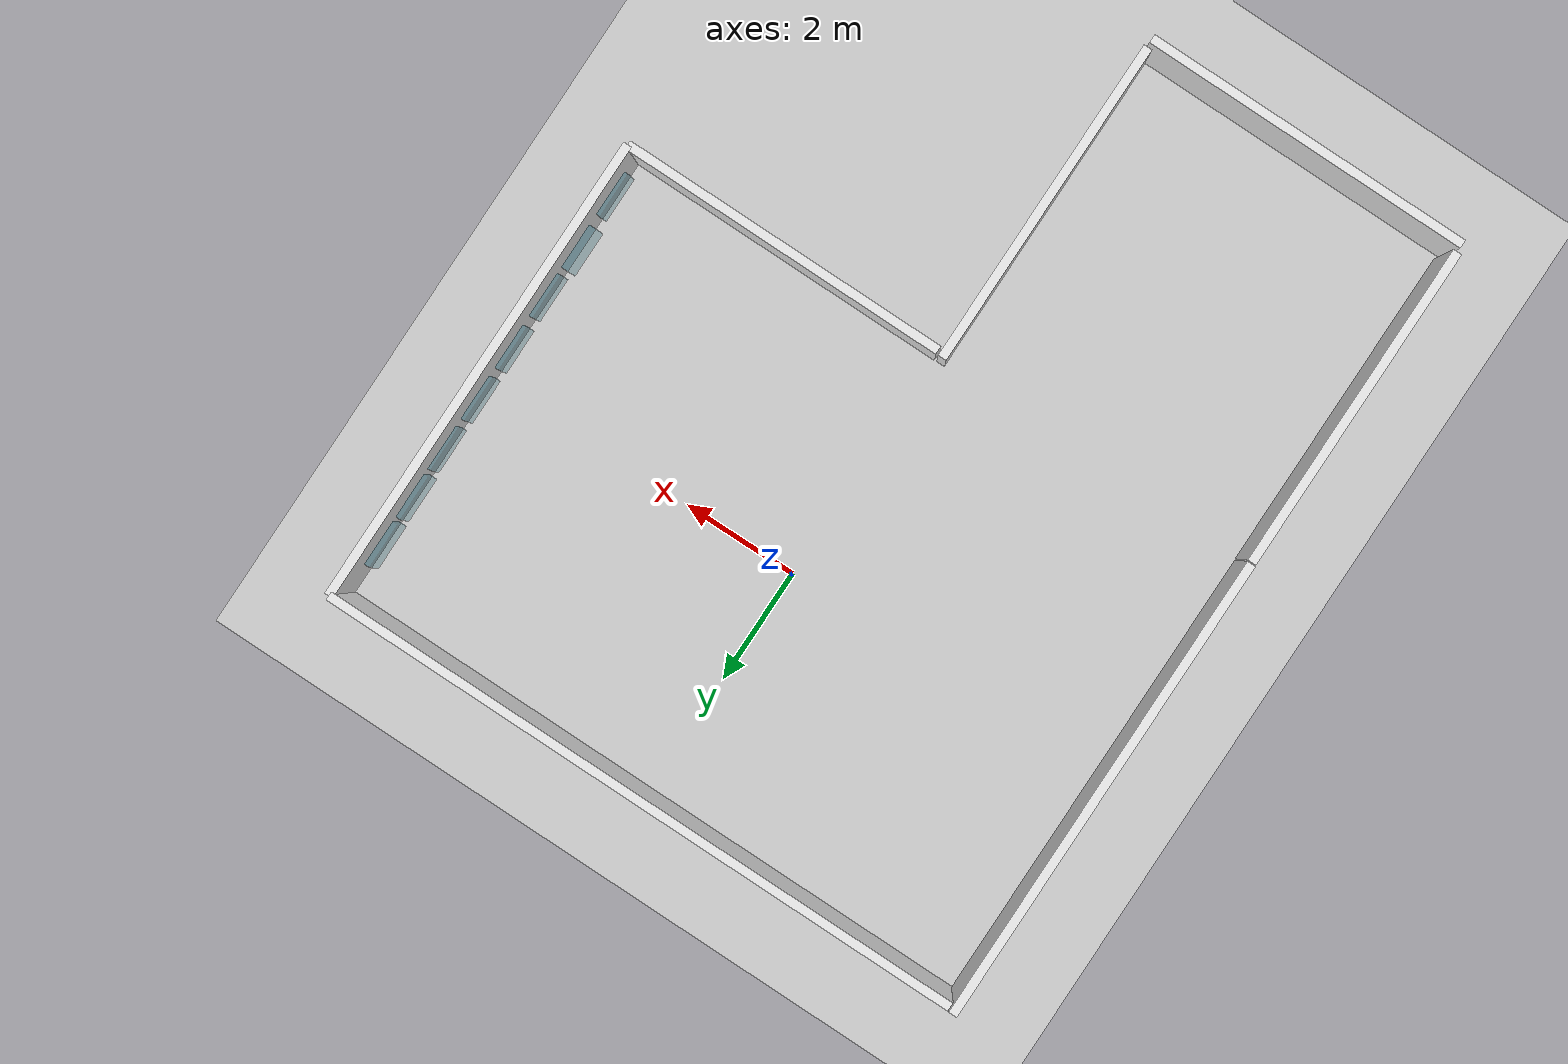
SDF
<sdf version="1.6">
 <world name="default">
  <light name="sun" type="directional">
   <cast_shadows>0</cast_shadows>
   <pose>0 0 10 0 -0 0</pose>
   <diffuse>0.8 0.8 0.8 1</diffuse>
   <specular>0.2 0.2 0.2 1</specular>
   <attenuation>
    <range>1000</range>
    <constant>0.9</constant>
    <linear>0.01</linear>
    <quadratic>0.001</quadratic>
   </attenuation>
   <direction>-0.5 0.5 -1</direction>
  </light>
  <gravity>0 0 -9.8</gravity>
  <magnetic_field>6e-06 2.3e-05 -4.2e-05</magnetic_field>
  <atmosphere type="adiabatic"/>
  <physics name="default_physics" default="0" type="ode">
   <max_step_size>0.01</max_step_size>
   <real_time_factor>1</real_time_factor>
   <real_time_update_rate>100</real_time_update_rate>
   <ode>
    <solver>
     <type>quick</type>
     <iters>100</iters>
     <precon_iters>0</precon_iters>
     <sor>1</sor>
     <use_dynamic_moi_rescaling>0</use_dynamic_moi_rescaling>
    </solver>
    <constraints>
     <cfm>0</cfm>
     <erp>0.5</erp>
     <contact_max_correcting_vel>1000</contact_max_correcting_vel>
     <contact_surface_layer>0</contact_surface_layer>
    </constraints>
   </ode>
  </physics>
  <scene>
   <ambient>0.4 0.4 0.4 1</ambient>
   <background>0.7 0.7 0.7 1</background>
   <shadows>0</shadows>
   <grid>false</grid>
   <origin_visual>false</origin_visual>
  </scene>
  <spherical_coordinates>
   <surface_model>EARTH_WGS84</surface_model>
   <latitude_deg>0</latitude_deg>
   <longitude_deg>0</longitude_deg>
   <elevation>0</elevation>
   <heading_deg>0</heading_deg>
  </spherical_coordinates>
  <model name="office_env_w2">
   <pose>0 4.162 1.25 0 -0 0</pose>
   <link name="Wall_10">
    <visual name="Wall_10_Visual_0">
     <geometry><box><size>11.466 0.15 2.5</size></box></geometry>
     <material>
      <script>
       <uri>model://office_env_w/materials/scripts</uri>
       <uri>model://office_env_w/materials/textures</uri>
       <name>wall_white</name>
      </script>
     </material>
     <meta><layer>0</layer></meta>
    </visual>
    <collision name="Wall_10_Collision_0"><geometry><box><size>11.466 0.15 2.5</size></box></geometry></collision>
   </link>
   <static>1</static>
  </model>
  <model name="office_env_w">
   <pose>5.733 0 1.25 0 -0 1.57</pose>
   <link name="Wall_10">
    <visual name="Wall_10_Visual_0">
     <geometry><box><size>8.324 0.15 2.5</size></box></geometry>
     <material>
      <script>
       <uri>model://office_env_w/materials/scripts</uri>
       <uri>model://office_env_w/materials/textures</uri>
       <name>wall_white</name>
      </script>
     </material>
     <meta><layer>0</layer></meta>
    </visual>
    <collision name="Wall_10_Collision_0"><geometry><box><size>8.324 0.15 2.5</size></box></geometry></collision>
   </link>
   <static>1</static>
  </model>
  <model name="office_env_w3">
   <pose>2.8655 -4.162 1.25 0 -0 0</pose>
   <link name="Wall_10">
    <visual name="Wall_10_Visual_0">
     <geometry><box><size>5.733 0.15 2.5</size></box></geometry>
     <material>
      <script>
       <uri>model://office_env_w/materials/scripts</uri>
       <uri>model://office_env_w/materials/textures</uri>
       <name>wall_white</name>
      </script>
     </material>
     <meta><layer>0</layer></meta>
    </visual>
    <collision name="Wall_10_Collision_0"><geometry><box><size>5.733 0.15 2.5</size></box></geometry></collision>
   </link>
   <static>1</static>
  </model>
  <model name="office_env_w3_clone">
   <pose>-0.116895 -6.96099 1.25 0 -0 1.57</pose>
   <link name="Wall_10">
    <visual name="Wall_10_Visual_0">
     <geometry><box><size>5.733 0.15 2.5</size></box></geometry>
     <material>
      <script>
       <uri>model://office_env_w/materials/scripts</uri>
       <uri>model://office_env_w/materials/textures</uri>
       <name>wall_white</name>
      </script>
     </material>
     <meta><layer>0</layer></meta>
    </visual>
    <collision name="Wall_10_Collision_0"><geometry><box><size>5.733 0.15 2.5</size></box></geometry></collision>
   </link>
   <static>1</static>
  </model>
  <model name="office_env_w_clone">
   <pose>-5.82948 0.079903 1.25 0 -0 1.57</pose>
   <link name="Wall_10">
    <visual name="Wall_10_Visual_0">
     <geometry><box><size>8.324 0.15 2.5</size></box></geometry>
     <material>
      <script>
       <uri>model://office_env_w/materials/scripts</uri>
       <uri>model://office_env_w/materials/textures</uri>
       <name>wall_white</name>
      </script>
     </material>
     <meta><layer>0</layer></meta>
    </visual>
    <collision name="Wall_10_Collision_0"><geometry><box><size>8.324 0.15 2.5</size></box></geometry></collision>
   </link>
   <static>1</static>
  </model>
  <model name="office_env_w3_clone_clone">
   <pose>-5.82704 -6.96526 1.25 0 -0 1.57</pose>
   <link name="Wall_10">
    <visual name="Wall_10_Visual_0">
     <geometry><box><size>5.733 0.15 2.5</size></box></geometry>
     <material>
      <script>
       <uri>model://office_env_w/materials/scripts</uri>
       <uri>model://office_env_w/materials/textures</uri>
       <name>wall_white</name>
      </script>
     </material>
     <meta><layer>0</layer></meta>
    </visual>
    <collision name="Wall_10_Collision_0"><geometry><box><size>5.733 0.15 2.5</size></box></geometry></collision>
   </link>
   <static>1</static>
  </model>
  <model name="office_env_w3_clone_0">
   <pose>-2.96341 -9.9742 1.25 0 -0 0</pose>
   <link name="Wall_10">
    <visual name="Wall_10_Visual_0">
     <geometry><box><size>5.733 0.15 2.5</size></box></geometry>
     <material>
      <script>
       <uri>model://office_env_w/materials/scripts</uri>
       <uri>model://office_env_w/materials/textures</uri>
       <name>wall_white</name>
      </script>
     </material>
     <meta><layer>0</layer></meta>
    </visual>
    <collision name="Wall_10_Collision_0"><geometry><box><size>5.733 0.15 2.5</size></box></geometry></collision>
   </link>
   <static>1</static>
  </model>
  <model name="window_3">
   <link name="link_2">
    <visual name="visual">
     <pose>0 0 0.9 0 -0 0</pose>
     <geometry><box><size>0.8 0.15 0.8</size></box></geometry>
     <material>
      <lighting>1</lighting>
      <ambient>0.1 0.5 0.6 1</ambient>
      <diffuse>0.1 0.5 0.6 1</diffuse>
      <specular>0.01 0.01 0.01 1</specular>
      <emissive>0 0 0 1</emissive>
     </material>
     <cast_shadows>0</cast_shadows>
     <transparency>0.7</transparency>
    </visual>
    <collision name="collision">
     <pose>0 0 0.9 0 -0 0</pose>
     <geometry><box><size>0.8 0.15 0.8</size></box></geometry>
    </collision>
   </link>
   <static>1</static>
   <pose>5.55041 3.13004 -0.000428 0.072676 0.011663 1.57159</pose>
  </model>
  <model name="window_3_clone_clone">
   <link name="link_2">
    <visual name="visual">
     <pose>0 0 0.9 0 -0 0</pose>
     <geometry><box><size>0.8 0.15 0.8</size></box></geometry>
     <material>
      <lighting>1</lighting>
      <ambient>0.1 0.5 0.6 1</ambient>
      <diffuse>0.1 0.5 0.6 1</diffuse>
      <specular>0.01 0.01 0.01 1</specular>
      <emissive>0 0 0 1</emissive>
     </material>
     <cast_shadows>0</cast_shadows>
     <transparency>0.7</transparency>
    </visual>
    <collision name="collision">
     <pose>0 0 0.9 0 -0 0</pose>
     <geometry><box><size>0.8 0.15 0.8</size></box></geometry>
    </collision>
   </link>
   <static>1</static>
   <pose>5.57835 0.394375 -0.000428 0.072676 0.011663 1.57159</pose>
  </model>
  <model name="window_3_clone_clone_0">
   <link name="link_2">
    <visual name="visual">
     <pose>0 0 0.9 0 -0 0</pose>
     <geometry><box><size>0.8 0.15 0.8</size></box></geometry>
     <material>
      <lighting>1</lighting>
      <ambient>0.1 0.5 0.6 1</ambient>
      <diffuse>0.1 0.5 0.6 1</diffuse>
      <specular>0.01 0.01 0.01 1</specular>
      <emissive>0 0 0 1</emissive>
     </material>
     <cast_shadows>0</cast_shadows>
     <transparency>0.7</transparency>
    </visual>
    <collision name="collision">
     <pose>0 0 0.9 0 -0 0</pose>
     <geometry><box><size>0.8 0.15 0.8</size></box></geometry>
    </collision>
   </link>
   <static>1</static>
   <pose>5.57507 -1.53947 -0.000428 0.072676 0.011663 1.57159</pose>
  </model>
  <model name="window_3_clone_clone_1">
   <link name="link_2">
    <visual name="visual">
     <pose>0 0 0.9 0 -0 0</pose>
     <geometry><box><size>0.8 0.15 0.8</size></box></geometry>
     <material>
      <lighting>1</lighting>
      <ambient>0.1 0.5 0.6 1</ambient>
      <diffuse>0.1 0.5 0.6 1</diffuse>
      <specular>0.01 0.01 0.01 1</specular>
      <emissive>0 0 0 1</emissive>
     </material>
     <cast_shadows>0</cast_shadows>
     <transparency>0.7</transparency>
    </visual>
    <collision name="collision">
     <pose>0 0 0.9 0 -0 0</pose>
     <geometry><box><size>0.8 0.15 0.8</size></box></geometry>
    </collision>
   </link>
   <static>1</static>
   <pose>5.57316 -3.44378 -0.000428 0.072676 0.011663 1.57159</pose>
  </model>
  <model name="window_3_clone_clone_2">
   <link name="link_2">
    <visual name="visual">
     <pose>0 0 0.9 0 -0 0</pose>
     <geometry><box><size>0.8 0.15 0.8</size></box></geometry>
     <material>
      <lighting>1</lighting>
      <ambient>0.1 0.5 0.6 1</ambient>
      <diffuse>0.1 0.5 0.6 1</diffuse>
      <specular>0.01 0.01 0.01 1</specular>
      <emissive>0 0 0 1</emissive>
     </material>
     <cast_shadows>0</cast_shadows>
     <transparency>0.7</transparency>
    </visual>
    <collision name="collision">
     <pose>0 0 0.9 0 -0 0</pose>
     <geometry><box><size>0.8 0.15 0.8</size></box></geometry>
    </collision>
   </link>
   <static>1</static>
   <pose>5.51026 -2.44936 -0.000428 0.072676 0.011663 1.57159</pose>
  </model>
  <model name="window_3_clone_clone_3">
   <link name="link_2">
    <visual name="visual">
     <pose>0 0 0.9 0 -0 0</pose>
     <geometry><box><size>0.8 0.15 0.8</size></box></geometry>
     <material>
      <lighting>1</lighting>
      <ambient>0.1 0.5 0.6 1</ambient>
      <diffuse>0.1 0.5 0.6 1</diffuse>
      <specular>0.01 0.01 0.01 1</specular>
      <emissive>0 0 0 1</emissive>
     </material>
     <cast_shadows>0</cast_shadows>
     <transparency>0.7</transparency>
    </visual>
    <collision name="collision">
     <pose>0 0 0.9 0 -0 0</pose>
     <geometry><box><size>0.8 0.15 0.8</size></box></geometry>
    </collision>
   </link>
   <static>1</static>
   <pose>5.56777 -0.565762 -0.000428 0.072676 0.011663 1.57159</pose>
  </model>
  <model name="window_3_clone_clone_4">
   <link name="link_2">
    <visual name="visual">
     <pose>0 0 0.9 0 -0 0</pose>
     <geometry><box><size>0.8 0.15 0.8</size></box></geometry>
     <material>
      <lighting>1</lighting>
      <ambient>0.1 0.5 0.6 1</ambient>
      <diffuse>0.1 0.5 0.6 1</diffuse>
      <specular>0.01 0.01 0.01 1</specular>
      <emissive>0 0 0 1</emissive>
     </material>
     <cast_shadows>0</cast_shadows>
     <transparency>0.7</transparency>
    </visual>
    <collision name="collision">
     <pose>0 0 0.9 0 -0 0</pose>
     <geometry><box><size>0.8 0.15 0.8</size></box></geometry>
    </collision>
   </link>
   <static>1</static>
   <pose>5.59135 1.3384 -0.000428 0.072676 0.011663 1.57159</pose>
  </model>
  <model name="window_3_clone_clone_5">
   <link name="link_2">
    <visual name="visual">
     <pose>0 0 0.9 0 -0 0</pose>
     <geometry><box><size>0.8 0.15 0.8</size></box></geometry>
     <material>
      <lighting>1</lighting>
      <ambient>0.1 0.5 0.6 1</ambient>
      <diffuse>0.1 0.5 0.6 1</diffuse>
      <specular>0.01 0.01 0.01 1</specular>
      <emissive>0 0 0 1</emissive>
     </material>
     <cast_shadows>0</cast_shadows>
     <transparency>0.7</transparency>
    </visual>
    <collision name="collision">
     <pose>0 0 0.9 0 -0 0</pose>
     <geometry><box><size>0.8 0.15 0.8</size></box></geometry>
    </collision>
   </link>
   <static>1</static>
   <pose>5.56149 2.2418 -0.000428 0.072676 0.011663 1.57159</pose>
  </model>
  <audio><device>default</device></audio>
  <model name="ground_plane">
   <static>1</static>
   <link name="link">
    <collision name="collision">
     <geometry><plane><normal>0 0 1</normal><size>100 100</size></plane></geometry>
     <surface><friction><ode><mu>100</mu><mu2>50</mu2></ode></friction></surface>
    </collision>
    <visual name="visual">
     <cast_shadows>0</cast_shadows>
     <geometry><plane><normal>0 0 1</normal><size>100 100</size></plane></geometry>
     <material>
      <script><uri>file://media/materials/scripts/gazebo.material</uri><name>Gazebo/Grey</name></script>
     </material>
    </visual>
   </link>
   <pose>15.6163 -0.783534 0 0 -0 0</pose>
  </model>
  <light name="user_point_light_0" type="point">
   <pose>3.54976 1.43038 1 0 -0 0</pose>
   <diffuse>0.5 0.5 0.5 1</diffuse>
   <specular>0.1 0.1 0.1 1</specular>
   <attenuation>
    <range>20</range>
    <constant>0.5</constant>
    <linear>0.01</linear>
    <quadratic>0.001</quadratic>
   </attenuation>
   <cast_shadows>0</cast_shadows>
   <direction>0 0 -1</direction>
  </light>
  <light name="user_point_light_0_clone" type="point">
   <pose>-8.02842 6.22549 7.18798 0 -0 0</pose>
   <diffuse>0.5 0.5 0.5 1</diffuse>
   <specular>0.1 0.1 0.1 1</specular>
   <direction>0 0 -1</direction>
   <attenuation>
    <range>20</range>
    <constant>0.5</constant>
    <linear>0.01</linear>
    <quadratic>0.001</quadratic>
   </attenuation>
   <cast_shadows>0</cast_shadows>
  </light>
  <plugin name="neo_link_attacher" filename="libneo_link_attacher_plugin.so">
   <ros><namespace>/link_attacher</namespace></ros>
  </plugin>
  <plugin name="gazebo_ros_state" filename="libgazebo_ros_state.so">
   <ros><namespace>/gazebo</namespace></ros>
   <update_rate>10.0</update_rate>
  </plugin>
 </world>
</sdf>
